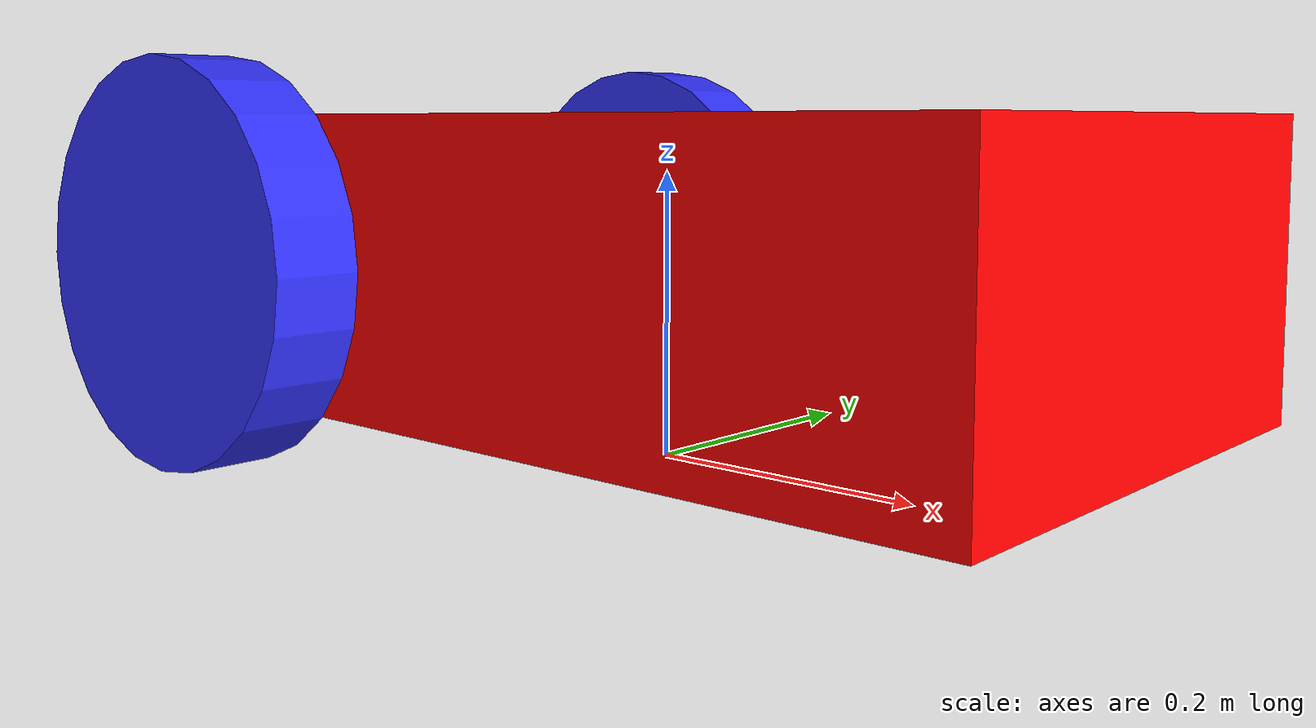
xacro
<?xml version="1.0" ?>

<robot name="demo_mobile_robot" xmlns:xacro="http://ros.org/wiki/xacro">

  <!-- Som base variables to define the size of the robot -->
  <xacro:property name="base_width" value="0.40"/>
  <xacro:property name="base_length" value="0.70"/>
  <xacro:property name="base_height" value="0.20"/>

  <xacro:property name="wheel_radius" value="0.14"/>
  <xacro:property name="wheel_width" value="0.06"/>
  <xacro:property name="wheel_ygap" value="0.035"/>
  <xacro:property name="wheel_zoff" value="0.05"/>
  <xacro:property name="wheel_xoff" value="0.221"/>
  <xacro:property name="caster_xoff" value="0.217"/>

  <!-- Define intertial property macros: box, zylinder, sphere -->
  <xacro:macro name="box_inertia" params="m w l h">
    <inertial>
      <origin xyz="0 0 0" rpy="${pi/2} 0 ${pi/2}"/>
      <mass value="${m}"/>
      <inertia ixx="${(m/12) * (h*h + l*l)}" ixy="0.0" ixz="0.0" iyy="${(m/12) * (w*w + l*l)}" iyz="0.0" izz="${(m/12) * (w*w + h*h)}"/>
    </inertial>
  </xacro:macro>

  <xacro:macro name="cylinder_inertia" params="m r h">
    <inertial>
      <origin xyz="0 0 0" rpy="${pi/2} 0 0" />
      <mass value="${m}"/>
      <inertia ixx="${(m/12) * (3*r*r + h*h)}" ixy = "0" ixz = "0" iyy="${(m/12) * (3*r*r + h*h)}" iyz = "0" izz="${(m/2) * (r*r)}"/>
    </inertial>
  </xacro:macro>

  <xacro:macro name="sphere_inertia" params="m r">
    <inertial>
      <mass value="${m}"/>
      <inertia ixx="${(2/5) * m * (r*r)}" ixy="0.0" ixz="0.0" iyy="${(2/5) * m * (r*r)}" iyz="0.0" izz="${(2/5) * m * (r*r)}"/>
    </inertial>
  </xacro:macro>

  <!-- The Ground/World -->
  <link name="map"/>

  <!-- The main chasis of the robot as a box -->
  <joint name="base_joint" type="fixed">
    <parent link="map"/>
    <child link="base_link" />
    <origin xyz="0.0 0.0 ${(wheel_radius+wheel_zoff)}" rpy="0 0 0"/>
  </joint>

  <link name="base_link">
    <visual>
      <origin xyz="0 0 -0.05" rpy="1.5707963267949 0 3.141592654"/>
      <geometry>
        <box size="${base_length} ${base_height} ${base_width}"/>
      </geometry>
      <material name="Red">
        <color rgba="${255/255} ${0/255} ${0/255} 1.0"/>
      </material>
    </visual>

    <collision>
      <geometry>
        <box size="${base_length} ${base_width} ${base_height}"/>
      </geometry>
    </collision>

    <xacro:box_inertia m="40.0" w="${base_width}" l="${base_length}" h="${base_height}"/>
  </link>

  <gazebo reference="base_link">
    <material>Gazebo/Red</material>
  </gazebo>

  <!-- Wheels, left and right -->
  <xacro:macro name="wheel" params="prefix x_reflect y_reflect">
    <link name="${prefix}_link">
      <visual>
        <origin xyz="0 0 0" rpy="1.5707963267949 0 0"/>
        <geometry>
            <cylinder radius="${wheel_radius}" length="${wheel_width}"/>
        </geometry>
        <material name="Blue">
          <color rgba="${50/255} ${50/255} ${255/255} 1.0"/>
        </material>
      </visual>

      <collision>
        <origin xyz="0 0 0" rpy="${pi/2} 0 0"/>
        <geometry>
          <cylinder radius="${wheel_radius}" length="${wheel_width}"/>
        </geometry>
      </collision>

      <xacro:cylinder_inertia m="110.5" r="${wheel_radius}" h="${wheel_width}"/>
    </link>

    <joint name="${prefix}_joint" type="revolute">
      <parent link="base_link"/>
      <child link="${prefix}_link"/>
      <origin xyz="${(x_reflect * wheel_xoff)} ${(y_reflect * (base_width / 2 + wheel_ygap))} ${-(wheel_zoff)}" rpy="0 0 0"/>
      <limit upper="3.1415" lower="-3.1415" effort="30" velocity="5.0"/>
      <axis xyz="0 1 0"/>
    </joint>

    <!-- Not sure atm how/if/why this is used/needed -->
    <transmission name="${prefix}_trans">
      <type>transmission_interface/SimpleTransmission</type>
      <joint name="${prefix}_hinge">
        <hardwareInterface>VelocityJointInterface</hardwareInterface>
      </joint>
      <actuator name="${prefix}_motor">
        <hardwareInterface>VelocityJointInterface</hardwareInterface>
        <mechanicalReduction>1</mechanicalReduction>
      </actuator>
    </transmission>

    <gazebo reference="${prefix}_joint">
      <mu1>1.0</mu1>
      <mu2>1.0</mu2>
      <kp>1000000.0</kp>
      <kd>100.0</kd>
      <minDepth>0.001</minDepth>
      <maxVel>1.0</maxVel>

      <material>Gazebo/Blue</material>
    </gazebo>
  </xacro:macro>

  <xacro:wheel prefix="left_wheel" x_reflect="-1" y_reflect="1" />
  <xacro:wheel prefix="right_wheel" x_reflect="-1" y_reflect="-1" />

  <!-- Front wheel as a sphere with actually no functionality than just roll -->
  <link name="front_caster">
    <visual>
      <geometry>
        <sphere radius="${(wheel_radius + wheel_zoff - (base_height / 2))}"/>
      </geometry>
      <material name="White">
        <color rgba="${255/255} ${255/255} ${255/255} 1.0"/>
      </material>
    </visual>
    <collision>
      <origin xyz="0 0 0" rpy="0 0 0"/>
      <geometry>
        <sphere radius="${(wheel_radius + wheel_zoff - (base_height / 2))}"/>
      </geometry>
    </collision>
    <xacro:sphere_inertia m="10.05" r="${(wheel_radius + wheel_zoff - (base_height / 2))}"/>
  </link>
  <gazebo reference="front_caster">
    <mu1>0.01</mu1>
    <mu2>0.01</mu2>
    <material>Gazebo/White</material>
  </gazebo>
  <joint name="caster_joint" type="fixed">
    <parent link="base_link"/>
    <child link="front_caster"/>
    <origin xyz="${caster_xoff} 0.0 ${-(base_height/2)}" rpy="0 0 0"/>
  </joint>

  <gazebo>
    <!-- Publish the position of the Robot and both wheel states -->
    <plugin name="gazebo_ros_joint_state_publisher" filename="libgazebo_ros_joint_state_publisher.so">
      <update_rate>20</update_rate>
      <joint_name>base_joint</joint_name>
      <joint_name>left_wheel_joint</joint_name>
      <joint_name>right_wheel_joint</joint_name>
    </plugin>

    <!-- Reads a geometry_msgs/msg/Twist from /cmd_vel and uses that to drive the robot -->
    <plugin name="diff_drive_controller" filename="libgazebo_ros_diff_drive.so">
      <wheels_per_side>1</wheels_per_side>
      <left_joint>left_wheel_joint</left_joint>
      <right_joint>right_wheel_joint</right_joint>
      <wheel_separation>${(base_width + wheel_ygap)}</wheel_separation>
      <wheel_diameter>${(wheel_radius * 2)}</wheel_diameter>
      <odom_publish_frequency>1</odom_publish_frequency>
      <topic>cmd_vel</topic>
    </plugin>
  </gazebo>

</robot>
